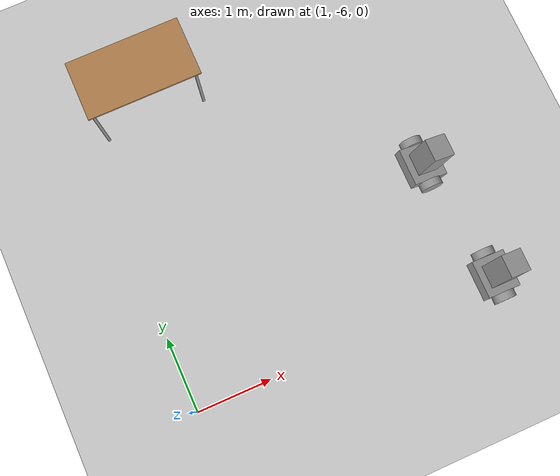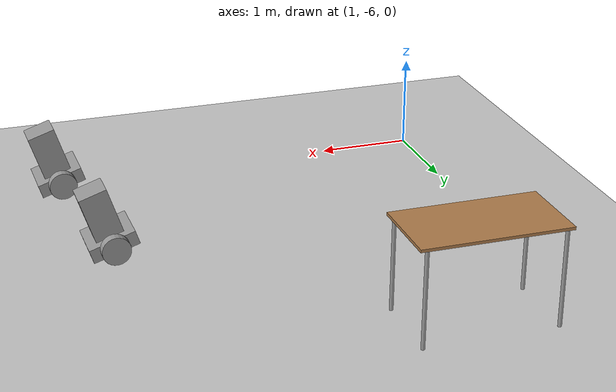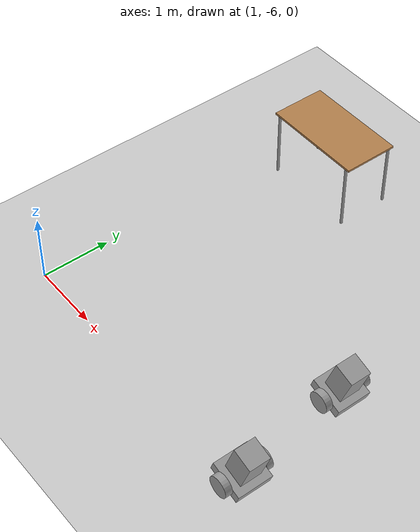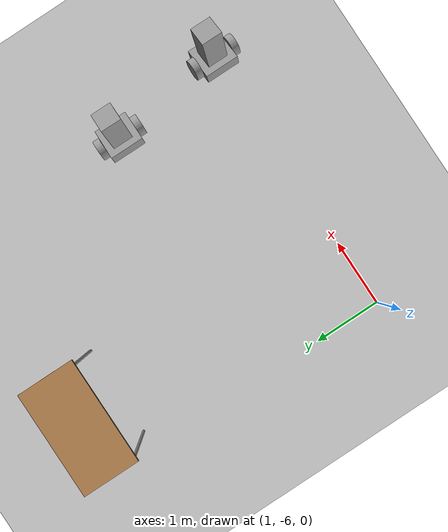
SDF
<sdf version="1.6">
 <world name="default">
  <model name="ground_plane">
   <static>1</static>
   <link name="link">
    <collision name="collision">
     <geometry><plane><normal>0 0 1</normal><size>100 100</size></plane></geometry>
     <surface>
      <contact><collide_bitmask>65535</collide_bitmask></contact>
      <friction><ode><mu>100</mu><mu2>50</mu2></ode></friction>
     </surface>
    </collision>
    <visual name="visual">
     <cast_shadows>0</cast_shadows>
     <geometry><plane><normal>0 0 1</normal><size>100 100</size></plane></geometry>
     <material>
      <script><uri>file://media/materials/scripts/gazebo.material</uri><name>Gazebo/Grey</name></script>
     </material>
    </visual>
   </link>
  </model>
  <model name="myrobot">
   <link name="link_0">
    <pose>0 0 0.06875 0 -0 0</pose>
    <inertial>
     <mass>1</mass>
     <inertia>
      <ixx>0.166667</ixx>
      <ixy>0</ixy>
      <ixz>0</ixz>
      <iyy>0.166667</iyy>
      <iyz>0</iyz>
      <izz>0.166667</izz>
     </inertia>
    </inertial>
    <visual name="visual">
     <geometry><box><size>0.5 0.5 0.15</size></box></geometry>
     <material>
      <lighting>1</lighting>
      <script><uri>file://media/materials/scripts/gazebo.material</uri><name>Gazebo/Grey</name></script>
      <shader type="pixel"><normal_map>__default__</normal_map></shader>
      <ambient>0.3 0.3 0.3 1</ambient>
      <diffuse>0.7 0.7 0.7 1</diffuse>
      <specular>0.01 0.01 0.01 1</specular>
      <emissive>0 0 0 1</emissive>
     </material>
    </visual>
    <collision name="collision">
     <geometry><box><size>0.5 0.5 0.15</size></box></geometry>
     <surface>
      <friction>
       <ode><mu>1</mu><mu2>1</mu2><fdir1>0 0 0</fdir1><slip1>0</slip1><slip2>0</slip2></ode>
       <torsional>
        <coefficient>1</coefficient>
        <patch_radius>0</patch_radius>
        <surface_radius>0</surface_radius>
        <use_patch_radius>1</use_patch_radius>
        <ode><slip>0</slip></ode>
       </torsional>
      </friction>
      <bounce><restitution_coefficient>0</restitution_coefficient><threshold>1e+06</threshold></bounce>
      <contact>
       <collide_without_contact>0</collide_without_contact>
       <collide_without_contact_bitmask>1</collide_without_contact_bitmask>
       <collide_bitmask>1</collide_bitmask>
       <ode>
        <soft_cfm>0</soft_cfm>
        <soft_erp>0.2</soft_erp>
        <kp>1e+13</kp>
        <kd>1</kd>
        <max_vel>0.01</max_vel>
        <min_depth>0</min_depth>
       </ode>
       <bullet>
        <split_impulse>1</split_impulse>
        <split_impulse_penetration_threshold>-0.01</split_impulse_penetration_threshold>
        <soft_cfm>0</soft_cfm>
        <soft_erp>0.2</soft_erp>
        <kp>1e+13</kp>
        <kd>1</kd>
       </bullet>
      </contact>
     </surface>
    </collision>
   </link>
   <link name="link_1">
    <pose>0 -0.300014 0.06875 1.5707 -0 0</pose>
    <inertial>
     <mass>1</mass>
     <inertia><ixx>0.145833</ixx><ixy>0</ixy><ixz>0</ixz><iyy>0.145833</iyy><iyz>0</iyz><izz>0.125</izz></inertia>
    </inertial>
    <visual name="visual">
     <geometry><cylinder><radius>0.15</radius><length>0.1</length></cylinder></geometry>
     <material>
      <lighting>1</lighting>
      <script><uri>file://media/materials/scripts/gazebo.material</uri><name>Gazebo/Grey</name></script>
      <shader type="pixel"><normal_map>__default__</normal_map></shader>
      <ambient>0.3 0.3 0.3 1</ambient>
      <diffuse>0.7 0.7 0.7 1</diffuse>
      <specular>0.01 0.01 0.01 1</specular>
      <emissive>0 0 0 1</emissive>
     </material>
    </visual>
    <collision name="collision">
     <geometry><cylinder><radius>0.15</radius><length>0.1</length></cylinder></geometry>
     <surface>
      <friction>
       <ode><mu>1</mu><mu2>1</mu2><fdir1>0 0 0</fdir1><slip1>0</slip1><slip2>0</slip2></ode>
       <torsional>
        <coefficient>1</coefficient>
        <patch_radius>0</patch_radius>
        <surface_radius>0</surface_radius>
        <use_patch_radius>1</use_patch_radius>
        <ode><slip>0</slip></ode>
       </torsional>
      </friction>
      <bounce><restitution_coefficient>0</restitution_coefficient><threshold>1e+06</threshold></bounce>
      <contact>
       <collide_without_contact>0</collide_without_contact>
       <collide_without_contact_bitmask>1</collide_without_contact_bitmask>
       <collide_bitmask>1</collide_bitmask>
       <ode>
        <soft_cfm>0</soft_cfm>
        <soft_erp>0.2</soft_erp>
        <kp>1e+13</kp>
        <kd>1</kd>
        <max_vel>0.01</max_vel>
        <min_depth>0</min_depth>
       </ode>
       <bullet>
        <split_impulse>1</split_impulse>
        <split_impulse_penetration_threshold>-0.01</split_impulse_penetration_threshold>
        <soft_cfm>0</soft_cfm>
        <soft_erp>0.2</soft_erp>
        <kp>1e+13</kp>
        <kd>1</kd>
       </bullet>
      </contact>
     </surface>
    </collision>
   </link>
   <link name="link_1_clone">
    <pose>0 0.300014 0.06875 1.5707 -0 0</pose>
    <inertial>
     <mass>1</mass>
     <inertia><ixx>0.145833</ixx><ixy>0</ixy><ixz>0</ixz><iyy>0.145833</iyy><iyz>0</iyz><izz>0.125</izz></inertia>
    </inertial>
    <visual name="visual">
     <geometry><cylinder><radius>0.15</radius><length>0.1</length></cylinder></geometry>
     <material>
      <lighting>1</lighting>
      <script><uri>file://media/materials/scripts/gazebo.material</uri><name>Gazebo/Grey</name></script>
      <shader type="pixel"><normal_map>__default__</normal_map></shader>
      <ambient>0.3 0.3 0.3 1</ambient>
      <diffuse>0.7 0.7 0.7 1</diffuse>
      <specular>0.01 0.01 0.01 1</specular>
      <emissive>0 0 0 1</emissive>
     </material>
    </visual>
    <collision name="collision">
     <geometry><cylinder><radius>0.15</radius><length>0.1</length></cylinder></geometry>
     <surface>
      <friction>
       <ode><mu>1</mu><mu2>1</mu2><fdir1>0 0 0</fdir1><slip1>0</slip1><slip2>0</slip2></ode>
       <torsional>
        <coefficient>1</coefficient>
        <patch_radius>0</patch_radius>
        <surface_radius>0</surface_radius>
        <use_patch_radius>1</use_patch_radius>
        <ode><slip>0</slip></ode>
       </torsional>
      </friction>
      <bounce><restitution_coefficient>0</restitution_coefficient><threshold>1e+06</threshold></bounce>
      <contact>
       <collide_without_contact>0</collide_without_contact>
       <collide_without_contact_bitmask>1</collide_without_contact_bitmask>
       <collide_bitmask>1</collide_bitmask>
       <ode>
        <soft_cfm>0</soft_cfm>
        <soft_erp>0.2</soft_erp>
        <kp>1e+13</kp>
        <kd>1</kd>
        <max_vel>0.01</max_vel>
        <min_depth>0</min_depth>
       </ode>
       <bullet>
        <split_impulse>1</split_impulse>
        <split_impulse_penetration_threshold>-0.01</split_impulse_penetration_threshold>
        <soft_cfm>0</soft_cfm>
        <soft_erp>0.2</soft_erp>
        <kp>1e+13</kp>
        <kd>1</kd>
       </bullet>
      </contact>
     </surface>
    </collision>
   </link>
   <link name="link_2">
    <pose>0 0 0.39375 0 -0 0</pose>
    <inertial>
     <mass>1</mass>
     <inertia>
      <ixx>0.166667</ixx>
      <ixy>0</ixy>
      <ixz>0</ixz>
      <iyy>0.166667</iyy>
      <iyz>0</iyz>
      <izz>0.166667</izz>
     </inertia>
    </inertial>
    <visual name="visual">
     <geometry><box><size>0.3 0.3 0.5</size></box></geometry>
     <material>
      <lighting>1</lighting>
      <script><uri>file://media/materials/scripts/gazebo.material</uri><name>Gazebo/Grey</name></script>
      <shader type="pixel"><normal_map>__default__</normal_map></shader>
      <ambient>0.3 0.3 0.3 1</ambient>
      <diffuse>0.7 0.7 0.7 1</diffuse>
      <specular>0.01 0.01 0.01 1</specular>
      <emissive>0 0 0 1</emissive>
     </material>
    </visual>
    <collision name="collision">
     <geometry><box><size>0.3 0.3 0.5</size></box></geometry>
     <surface>
      <friction>
       <ode><mu>1</mu><mu2>1</mu2><fdir1>0 0 0</fdir1><slip1>0</slip1><slip2>0</slip2></ode>
       <torsional>
        <coefficient>1</coefficient>
        <patch_radius>0</patch_radius>
        <surface_radius>0</surface_radius>
        <use_patch_radius>1</use_patch_radius>
        <ode><slip>0</slip></ode>
       </torsional>
      </friction>
      <bounce><restitution_coefficient>0</restitution_coefficient><threshold>1e+06</threshold></bounce>
      <contact>
       <collide_without_contact>0</collide_without_contact>
       <collide_without_contact_bitmask>1</collide_without_contact_bitmask>
       <collide_bitmask>1</collide_bitmask>
       <ode>
        <soft_cfm>0</soft_cfm>
        <soft_erp>0.2</soft_erp>
        <kp>1e+13</kp>
        <kd>1</kd>
        <max_vel>0.01</max_vel>
        <min_depth>0</min_depth>
       </ode>
       <bullet>
        <split_impulse>1</split_impulse>
        <split_impulse_penetration_threshold>-0.01</split_impulse_penetration_threshold>
        <soft_cfm>0</soft_cfm>
        <soft_erp>0.2</soft_erp>
        <kp>1e+13</kp>
        <kd>1</kd>
       </bullet>
      </contact>
     </surface>
    </collision>
   </link>
   <joint name="link_0_JOINT_0" type="revolute">
    <parent>link_0</parent>
    <child>link_1</child>
    <axis>
     <xyz>0 0 1</xyz>
     <use_parent_model_frame>0</use_parent_model_frame>
     <limit>
      <lower>-1.79769e+308</lower>
      <upper>1.79769e+308</upper>
      <effort>-1</effort>
      <velocity>-1</velocity>
     </limit>
     <dynamics>
      <spring_reference>0</spring_reference>
      <spring_stiffness>0</spring_stiffness>
      <damping>0</damping>
      <friction>0</friction>
     </dynamics>
    </axis>
    <physics>
     <ode><limit><cfm>0</cfm><erp>0.2</erp></limit><suspension><cfm>0</cfm><erp>0.2</erp></suspension></ode>
    </physics>
   </joint>
   <joint name="link_0_JOINT_1" type="revolute">
    <parent>link_0</parent>
    <child>link_1_clone</child>
    <axis>
     <xyz>0 0 1</xyz>
     <use_parent_model_frame>0</use_parent_model_frame>
     <limit>
      <lower>-1.79769e+308</lower>
      <upper>1.79769e+308</upper>
      <effort>-1</effort>
      <velocity>-1</velocity>
     </limit>
     <dynamics>
      <spring_reference>0</spring_reference>
      <spring_stiffness>0</spring_stiffness>
      <damping>0</damping>
      <friction>0</friction>
     </dynamics>
    </axis>
    <physics>
     <ode><limit><cfm>0</cfm><erp>0.2</erp></limit><suspension><cfm>0</cfm><erp>0.2</erp></suspension></ode>
    </physics>
   </joint>
   <joint name="link_0_JOINT_3" type="revolute">
    <parent>link_0</parent>
    <child>link_2</child>
    <axis>
     <xyz>1 0 0</xyz>
     <use_parent_model_frame>0</use_parent_model_frame>
     <limit>
      <lower>-1.79769e+308</lower>
      <upper>1.79769e+308</upper>
      <effort>-1</effort>
      <velocity>-1</velocity>
     </limit>
     <dynamics>
      <spring_reference>0</spring_reference>
      <spring_stiffness>0</spring_stiffness>
      <damping>0</damping>
     </dynamics>
    </axis>
    <physics>
     <ode><limit><cfm>0</cfm><erp>0.2</erp></limit><suspension><cfm>0</cfm><erp>0.2</erp></suspension></ode>
    </physics>
   </joint>
   <static>0</static>
   <pose>5.0992 -5.95826 0.084762 0 0.320796 -0.001574</pose>
  </model>
  <model name="myrobot_0">
   <link name="link_0">
    <pose>0 0 0.06875 0 -0 0</pose>
    <inertial>
     <mass>1</mass>
     <inertia>
      <ixx>0.166667</ixx>
      <ixy>0</ixy>
      <ixz>0</ixz>
      <iyy>0.166667</iyy>
      <iyz>0</iyz>
      <izz>0.166667</izz>
     </inertia>
    </inertial>
    <visual name="visual">
     <geometry><box><size>0.5 0.5 0.15</size></box></geometry>
     <material>
      <lighting>1</lighting>
      <script><uri>file://media/materials/scripts/gazebo.material</uri><name>Gazebo/Grey</name></script>
      <shader type="pixel"><normal_map>__default__</normal_map></shader>
      <ambient>0.3 0.3 0.3 1</ambient>
      <diffuse>0.7 0.7 0.7 1</diffuse>
      <specular>0.01 0.01 0.01 1</specular>
      <emissive>0 0 0 1</emissive>
     </material>
    </visual>
    <collision name="collision">
     <geometry><box><size>0.5 0.5 0.15</size></box></geometry>
     <surface>
      <friction>
       <ode><mu>1</mu><mu2>1</mu2><fdir1>0 0 0</fdir1><slip1>0</slip1><slip2>0</slip2></ode>
       <torsional>
        <coefficient>1</coefficient>
        <patch_radius>0</patch_radius>
        <surface_radius>0</surface_radius>
        <use_patch_radius>1</use_patch_radius>
        <ode><slip>0</slip></ode>
       </torsional>
      </friction>
      <bounce><restitution_coefficient>0</restitution_coefficient><threshold>1e+06</threshold></bounce>
      <contact>
       <collide_without_contact>0</collide_without_contact>
       <collide_without_contact_bitmask>1</collide_without_contact_bitmask>
       <collide_bitmask>1</collide_bitmask>
       <ode>
        <soft_cfm>0</soft_cfm>
        <soft_erp>0.2</soft_erp>
        <kp>1e+13</kp>
        <kd>1</kd>
        <max_vel>0.01</max_vel>
        <min_depth>0</min_depth>
       </ode>
       <bullet>
        <split_impulse>1</split_impulse>
        <split_impulse_penetration_threshold>-0.01</split_impulse_penetration_threshold>
        <soft_cfm>0</soft_cfm>
        <soft_erp>0.2</soft_erp>
        <kp>1e+13</kp>
        <kd>1</kd>
       </bullet>
      </contact>
     </surface>
    </collision>
   </link>
   <link name="link_1">
    <pose>0 -0.300014 0.06875 1.5707 -0 0</pose>
    <inertial>
     <mass>1</mass>
     <inertia><ixx>0.145833</ixx><ixy>0</ixy><ixz>0</ixz><iyy>0.145833</iyy><iyz>0</iyz><izz>0.125</izz></inertia>
    </inertial>
    <visual name="visual">
     <geometry><cylinder><radius>0.15</radius><length>0.1</length></cylinder></geometry>
     <material>
      <lighting>1</lighting>
      <script><uri>file://media/materials/scripts/gazebo.material</uri><name>Gazebo/Grey</name></script>
      <shader type="pixel"><normal_map>__default__</normal_map></shader>
      <ambient>0.3 0.3 0.3 1</ambient>
      <diffuse>0.7 0.7 0.7 1</diffuse>
      <specular>0.01 0.01 0.01 1</specular>
      <emissive>0 0 0 1</emissive>
     </material>
    </visual>
    <collision name="collision">
     <geometry><cylinder><radius>0.15</radius><length>0.1</length></cylinder></geometry>
     <surface>
      <friction>
       <ode><mu>1</mu><mu2>1</mu2><fdir1>0 0 0</fdir1><slip1>0</slip1><slip2>0</slip2></ode>
       <torsional>
        <coefficient>1</coefficient>
        <patch_radius>0</patch_radius>
        <surface_radius>0</surface_radius>
        <use_patch_radius>1</use_patch_radius>
        <ode><slip>0</slip></ode>
       </torsional>
      </friction>
      <bounce><restitution_coefficient>0</restitution_coefficient><threshold>1e+06</threshold></bounce>
      <contact>
       <collide_without_contact>0</collide_without_contact>
       <collide_without_contact_bitmask>1</collide_without_contact_bitmask>
       <collide_bitmask>1</collide_bitmask>
       <ode>
        <soft_cfm>0</soft_cfm>
        <soft_erp>0.2</soft_erp>
        <kp>1e+13</kp>
        <kd>1</kd>
        <max_vel>0.01</max_vel>
        <min_depth>0</min_depth>
       </ode>
       <bullet>
        <split_impulse>1</split_impulse>
        <split_impulse_penetration_threshold>-0.01</split_impulse_penetration_threshold>
        <soft_cfm>0</soft_cfm>
        <soft_erp>0.2</soft_erp>
        <kp>1e+13</kp>
        <kd>1</kd>
       </bullet>
      </contact>
     </surface>
    </collision>
   </link>
   <link name="link_1_clone">
    <pose>0 0.300014 0.06875 1.5707 -0 0</pose>
    <inertial>
     <mass>1</mass>
     <inertia><ixx>0.145833</ixx><ixy>0</ixy><ixz>0</ixz><iyy>0.145833</iyy><iyz>0</iyz><izz>0.125</izz></inertia>
    </inertial>
    <visual name="visual">
     <geometry><cylinder><radius>0.15</radius><length>0.1</length></cylinder></geometry>
     <material>
      <lighting>1</lighting>
      <script><uri>file://media/materials/scripts/gazebo.material</uri><name>Gazebo/Grey</name></script>
      <shader type="pixel"><normal_map>__default__</normal_map></shader>
      <ambient>0.3 0.3 0.3 1</ambient>
      <diffuse>0.7 0.7 0.7 1</diffuse>
      <specular>0.01 0.01 0.01 1</specular>
      <emissive>0 0 0 1</emissive>
     </material>
    </visual>
    <collision name="collision">
     <geometry><cylinder><radius>0.15</radius><length>0.1</length></cylinder></geometry>
     <surface>
      <friction>
       <ode><mu>1</mu><mu2>1</mu2><fdir1>0 0 0</fdir1><slip1>0</slip1><slip2>0</slip2></ode>
       <torsional>
        <coefficient>1</coefficient>
        <patch_radius>0</patch_radius>
        <surface_radius>0</surface_radius>
        <use_patch_radius>1</use_patch_radius>
        <ode><slip>0</slip></ode>
       </torsional>
      </friction>
      <bounce><restitution_coefficient>0</restitution_coefficient><threshold>1e+06</threshold></bounce>
      <contact>
       <collide_without_contact>0</collide_without_contact>
       <collide_without_contact_bitmask>1</collide_without_contact_bitmask>
       <collide_bitmask>1</collide_bitmask>
       <ode>
        <soft_cfm>0</soft_cfm>
        <soft_erp>0.2</soft_erp>
        <kp>1e+13</kp>
        <kd>1</kd>
        <max_vel>0.01</max_vel>
        <min_depth>0</min_depth>
       </ode>
       <bullet>
        <split_impulse>1</split_impulse>
        <split_impulse_penetration_threshold>-0.01</split_impulse_penetration_threshold>
        <soft_cfm>0</soft_cfm>
        <soft_erp>0.2</soft_erp>
        <kp>1e+13</kp>
        <kd>1</kd>
       </bullet>
      </contact>
     </surface>
    </collision>
   </link>
   <link name="link_2">
    <pose>0 0 0.39375 0 -0 0</pose>
    <inertial>
     <mass>1</mass>
     <inertia>
      <ixx>0.166667</ixx>
      <ixy>0</ixy>
      <ixz>0</ixz>
      <iyy>0.166667</iyy>
      <iyz>0</iyz>
      <izz>0.166667</izz>
     </inertia>
    </inertial>
    <visual name="visual">
     <geometry><box><size>0.3 0.3 0.5</size></box></geometry>
     <material>
      <lighting>1</lighting>
      <script><uri>file://media/materials/scripts/gazebo.material</uri><name>Gazebo/Grey</name></script>
      <shader type="pixel"><normal_map>__default__</normal_map></shader>
      <ambient>0.3 0.3 0.3 1</ambient>
      <diffuse>0.7 0.7 0.7 1</diffuse>
      <specular>0.01 0.01 0.01 1</specular>
      <emissive>0 0 0 1</emissive>
     </material>
    </visual>
    <collision name="collision">
     <geometry><box><size>0.3 0.3 0.5</size></box></geometry>
     <surface>
      <friction>
       <ode><mu>1</mu><mu2>1</mu2><fdir1>0 0 0</fdir1><slip1>0</slip1><slip2>0</slip2></ode>
       <torsional>
        <coefficient>1</coefficient>
        <patch_radius>0</patch_radius>
        <surface_radius>0</surface_radius>
        <use_patch_radius>1</use_patch_radius>
        <ode><slip>0</slip></ode>
       </torsional>
      </friction>
      <bounce><restitution_coefficient>0</restitution_coefficient><threshold>1e+06</threshold></bounce>
      <contact>
       <collide_without_contact>0</collide_without_contact>
       <collide_without_contact_bitmask>1</collide_without_contact_bitmask>
       <collide_bitmask>1</collide_bitmask>
       <ode>
        <soft_cfm>0</soft_cfm>
        <soft_erp>0.2</soft_erp>
        <kp>1e+13</kp>
        <kd>1</kd>
        <max_vel>0.01</max_vel>
        <min_depth>0</min_depth>
       </ode>
       <bullet>
        <split_impulse>1</split_impulse>
        <split_impulse_penetration_threshold>-0.01</split_impulse_penetration_threshold>
        <soft_cfm>0</soft_cfm>
        <soft_erp>0.2</soft_erp>
        <kp>1e+13</kp>
        <kd>1</kd>
       </bullet>
      </contact>
     </surface>
    </collision>
   </link>
   <joint name="link_0_JOINT_0" type="revolute">
    <parent>link_0</parent>
    <child>link_1</child>
    <axis>
     <xyz>0 0 1</xyz>
     <use_parent_model_frame>0</use_parent_model_frame>
     <limit>
      <lower>-1.79769e+308</lower>
      <upper>1.79769e+308</upper>
      <effort>-1</effort>
      <velocity>-1</velocity>
     </limit>
     <dynamics>
      <spring_reference>0</spring_reference>
      <spring_stiffness>0</spring_stiffness>
      <damping>0</damping>
      <friction>0</friction>
     </dynamics>
    </axis>
    <physics>
     <ode><limit><cfm>0</cfm><erp>0.2</erp></limit><suspension><cfm>0</cfm><erp>0.2</erp></suspension></ode>
    </physics>
   </joint>
   <joint name="link_0_JOINT_1" type="revolute">
    <parent>link_0</parent>
    <child>link_1_clone</child>
    <axis>
     <xyz>0 0 1</xyz>
     <use_parent_model_frame>0</use_parent_model_frame>
     <limit>
      <lower>-1.79769e+308</lower>
      <upper>1.79769e+308</upper>
      <effort>-1</effort>
      <velocity>-1</velocity>
     </limit>
     <dynamics>
      <spring_reference>0</spring_reference>
      <spring_stiffness>0</spring_stiffness>
      <damping>0</damping>
      <friction>0</friction>
     </dynamics>
    </axis>
    <physics>
     <ode><limit><cfm>0</cfm><erp>0.2</erp></limit><suspension><cfm>0</cfm><erp>0.2</erp></suspension></ode>
    </physics>
   </joint>
   <joint name="link_0_JOINT_3" type="revolute">
    <parent>link_0</parent>
    <child>link_2</child>
    <axis>
     <xyz>1 0 0</xyz>
     <use_parent_model_frame>0</use_parent_model_frame>
     <limit>
      <lower>-1.79769e+308</lower>
      <upper>1.79769e+308</upper>
      <effort>-1</effort>
      <velocity>-1</velocity>
     </limit>
     <dynamics>
      <spring_reference>0</spring_reference>
      <spring_stiffness>0</spring_stiffness>
      <damping>0</damping>
     </dynamics>
    </axis>
    <physics>
     <ode><limit><cfm>0</cfm><erp>0.2</erp></limit><suspension><cfm>0</cfm><erp>0.2</erp></suspension></ode>
    </physics>
   </joint>
   <static>0</static>
   <pose>4.88476 -4.26388 0.084761 -0 0.320796 -0.001397</pose>
  </model>
  <model name="table_2">
   <static>1</static>
   <link name="link">
    <collision name="surface">
     <pose>0 0 1 0 -0 0</pose>
     <geometry><box><size>1.5 0.8 0.03</size></box></geometry>
     <surface><friction><ode><mu>0.6</mu><mu2>0.6</mu2></ode></friction></surface>
    </collision>
    <visual name="visual1">
     <pose>0 0 1 0 -0 0</pose>
     <geometry><box><size>1.5 0.8 0.03</size></box></geometry>
     <material>
      <script><uri>file://media/materials/scripts/gazebo.material</uri><name>Gazebo/Wood</name></script>
     </material>
    </visual>
    <collision name="front_left_leg">
     <pose>0.68 0.38 0.5 0 -0 0</pose>
     <geometry><cylinder><radius>0.02</radius><length>1</length></cylinder></geometry>
    </collision>
    <visual name="front_left_leg">
     <pose>0.68 0.38 0.5 0 -0 0</pose>
     <geometry><cylinder><radius>0.02</radius><length>1</length></cylinder></geometry>
     <material>
      <script><uri>file://media/materials/scripts/gazebo.material</uri><name>Gazebo/Grey</name></script>
     </material>
    </visual>
    <collision name="front_right_leg">
     <pose>0.68 -0.38 0.5 0 -0 0</pose>
     <geometry><cylinder><radius>0.02</radius><length>1</length></cylinder></geometry>
    </collision>
    <visual name="front_right_leg">
     <pose>0.68 -0.38 0.5 0 -0 0</pose>
     <geometry><cylinder><radius>0.02</radius><length>1</length></cylinder></geometry>
     <material>
      <script><uri>file://media/materials/scripts/gazebo.material</uri><name>Gazebo/Grey</name></script>
     </material>
    </visual>
    <collision name="back_right_leg">
     <pose>-0.68 -0.38 0.5 0 -0 0</pose>
     <geometry><cylinder><radius>0.02</radius><length>1</length></cylinder></geometry>
    </collision>
    <visual name="back_right_leg">
     <pose>-0.68 -0.38 0.5 0 -0 0</pose>
     <geometry><cylinder><radius>0.02</radius><length>1</length></cylinder></geometry>
     <material>
      <script><uri>file://media/materials/scripts/gazebo.material</uri><name>Gazebo/Grey</name></script>
     </material>
    </visual>
    <collision name="back_left_leg">
     <pose>-0.68 0.38 0.5 0 -0 0</pose>
     <geometry><cylinder><radius>0.02</radius><length>1</length></cylinder></geometry>
    </collision>
    <visual name="back_left_leg">
     <pose>-0.68 0.38 0.5 0 -0 0</pose>
     <geometry><cylinder><radius>0.02</radius><length>1</length></cylinder></geometry>
     <material>
      <script><uri>file://media/materials/scripts/gazebo.material</uri><name>Gazebo/Grey</name></script>
     </material>
    </visual>
   </link>
   <pose>1.9782 -1.87122 0 0 -0 0</pose>
  </model>
 </world>
</sdf>
